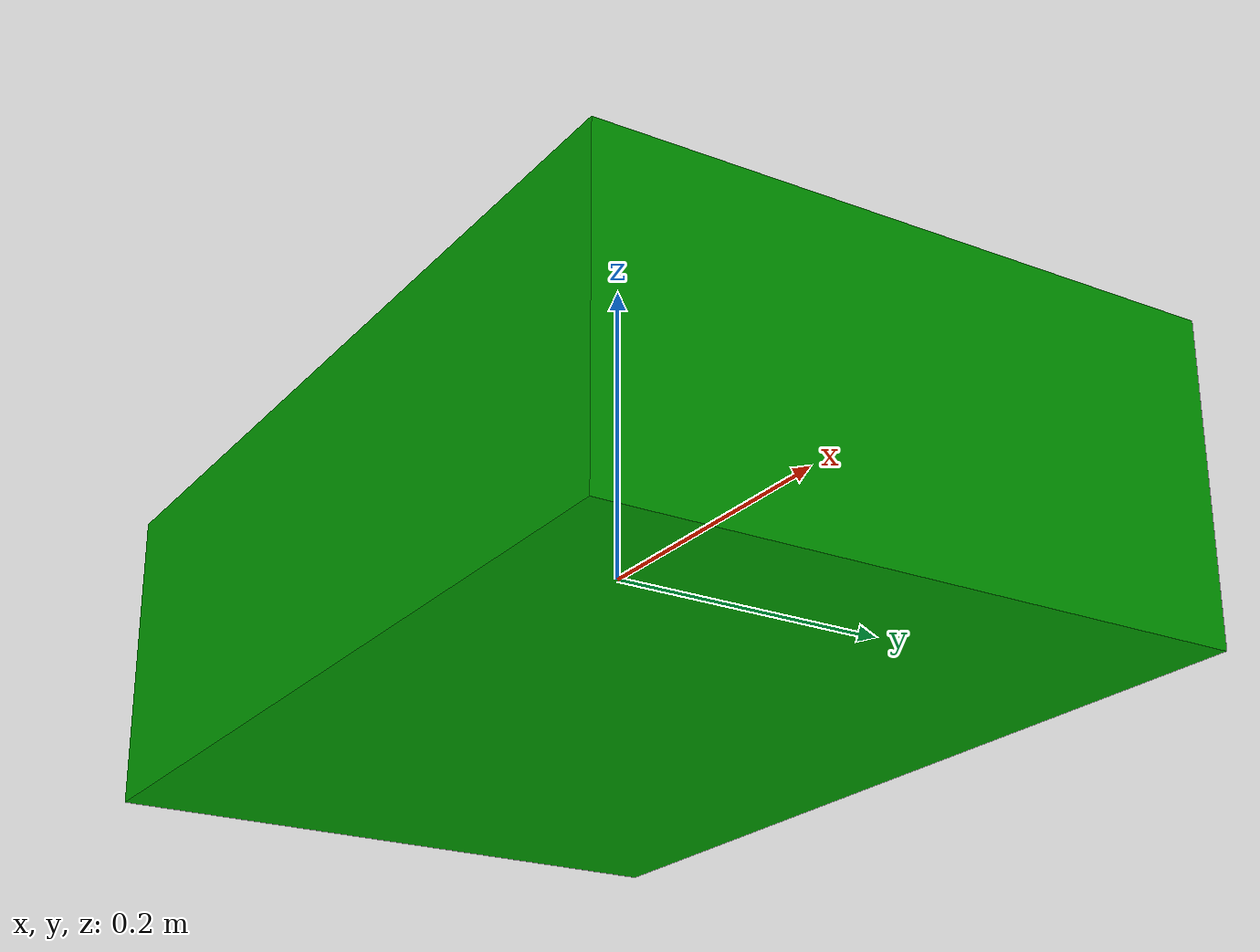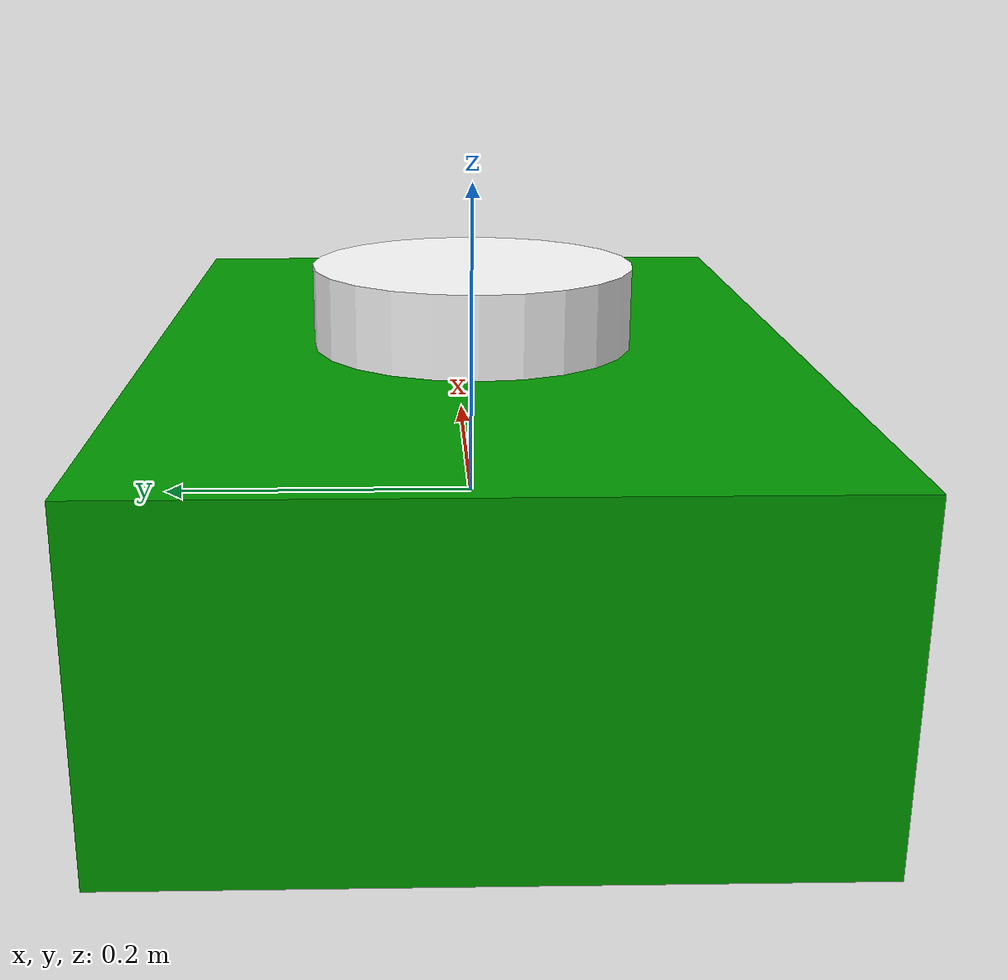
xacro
<?xml version="1.0"?>

<robot name="myfirst">

    <material name="grey">
        <color rgba="0.7 0.7 0.7 1"/>
    </material>

    <material name="green">
        <color rgba="0 0.6 0 1"/>
    </material>

    <material name="white">
        <color rgba="1 1 1 1"/>
    </material>

    <link name = "base_link">
        <visual>
            <geometry>
                <box size="0.6 0.4 0.2"/>
            </geometry>
            <orign xyz="0 0 0" rpy="0 0 0"/>
            <material name ="green"/>
        </visual>
    </link>

    <link name="lidar">
        <visual>
            <geometry>
                <cylinder length="0.05" radius="0.1"/>
            </geometry>
            <origin xyz="0 0 0" rpy="0 0 0"/>
            <material name="white"/>
        </visual>
    </link>

    <joint name="base_lidar_joint" type="fixed">
        <parent link="base_link"/>
        <child link="lidar"/>
        <origin xyz="0 0 0.125" rpy="0 0 0"/>
    </joint>

</robot>
